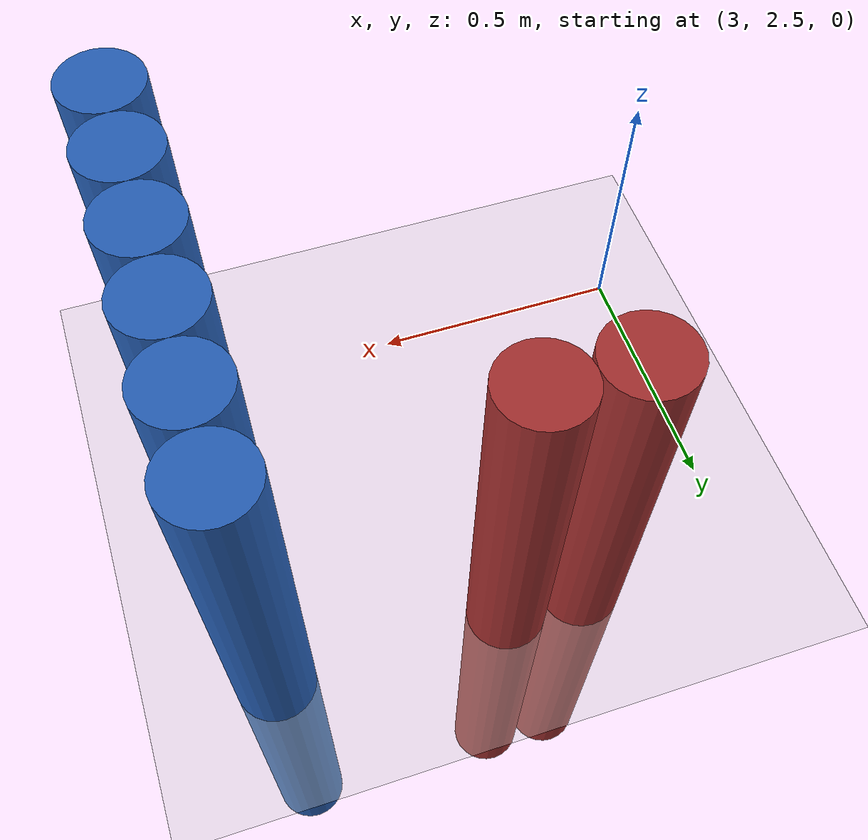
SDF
<sdf version="1.6">
 <world name="default">
  <model name="ground_plane">
   <static>1</static>
   <link name="link">
    <collision name="collision">
     <geometry><plane><normal>0 0 1</normal><size>100 100</size></plane></geometry>
     <surface><friction><ode><mu>100</mu><mu2>50</mu2></ode></friction></surface>
    </collision>
    <visual name="visual">
     <cast_shadows>0</cast_shadows>
     <geometry><plane><normal>0 0 1</normal><size>100 100</size></plane></geometry>
     <material>
      <script><uri>file://media/materials/scripts/gazebo.material</uri><name>Gazebo/Grey</name></script>
     </material>
    </visual>
   </link>
  </model>
  <model name="unit_cylinder_146">
   <static>1</static>
   <pose>3.925000 2.425000 0.000000 0.000000 0.000000 0.000000</pose>
   <link name="link">
    <inertial>
     <mass>1</mass>
     <inertia><ixx>0.145833</ixx><ixy>0</ixy><ixz>0</ixz><iyy>0.145833</iyy><iyz>0</iyz><izz>0.125</izz></inertia>
    </inertial>
    <collision name="collision">
     <geometry><cylinder><radius>0.075000</radius><length>1.5</length></cylinder></geometry>
    </collision>
    <visual name="visual">
     <geometry><cylinder><radius>0.075000</radius><length>1.5</length></cylinder></geometry>
     <material>
      <ambient>0.152000 0.379000 0.720000 1</ambient>
      <diffuse>0.152000 0.379000 0.720000 1</diffuse>
     </material>
     <material>
      <script><name>Gazebo/Grey</name><uri>file://media/materials/scripts/gazebo.material</uri></script>
     </material>
    </visual>
   </link>
  </model>
  <model name="unit_cylinder_148">
   <static>1</static>
   <pose>3.925000 2.575000 0.000000 0.000000 0.000000 0.000000</pose>
   <link name="link">
    <inertial>
     <mass>1</mass>
     <inertia><ixx>0.145833</ixx><ixy>0</ixy><ixz>0</ixz><iyy>0.145833</iyy><iyz>0</iyz><izz>0.125</izz></inertia>
    </inertial>
    <collision name="collision">
     <geometry><cylinder><radius>0.075000</radius><length>1.5</length></cylinder></geometry>
    </collision>
    <visual name="visual">
     <geometry><cylinder><radius>0.075000</radius><length>1.5</length></cylinder></geometry>
     <material>
      <ambient>0.152000 0.379000 0.720000 1</ambient>
      <diffuse>0.152000 0.379000 0.720000 1</diffuse>
     </material>
     <material>
      <script><name>Gazebo/Grey</name><uri>file://media/materials/scripts/gazebo.material</uri></script>
     </material>
    </visual>
   </link>
  </model>
  <model name="unit_cylinder_150">
   <static>1</static>
   <pose>3.925000 2.725000 0.000000 0.000000 0.000000 0.000000</pose>
   <link name="link">
    <inertial>
     <mass>1</mass>
     <inertia><ixx>0.145833</ixx><ixy>0</ixy><ixz>0</ixz><iyy>0.145833</iyy><iyz>0</iyz><izz>0.125</izz></inertia>
    </inertial>
    <collision name="collision">
     <geometry><cylinder><radius>0.075000</radius><length>1.5</length></cylinder></geometry>
    </collision>
    <visual name="visual">
     <geometry><cylinder><radius>0.075000</radius><length>1.5</length></cylinder></geometry>
     <material>
      <ambient>0.152000 0.379000 0.720000 1</ambient>
      <diffuse>0.152000 0.379000 0.720000 1</diffuse>
     </material>
     <material>
      <script><name>Gazebo/Grey</name><uri>file://media/materials/scripts/gazebo.material</uri></script>
     </material>
    </visual>
   </link>
  </model>
  <model name="unit_cylinder_152">
   <static>1</static>
   <pose>3.925000 2.875000 0.000000 0.000000 0.000000 0.000000</pose>
   <link name="link">
    <inertial>
     <mass>1</mass>
     <inertia><ixx>0.145833</ixx><ixy>0</ixy><ixz>0</ixz><iyy>0.145833</iyy><iyz>0</iyz><izz>0.125</izz></inertia>
    </inertial>
    <collision name="collision">
     <geometry><cylinder><radius>0.075000</radius><length>1.5</length></cylinder></geometry>
    </collision>
    <visual name="visual">
     <geometry><cylinder><radius>0.075000</radius><length>1.5</length></cylinder></geometry>
     <material>
      <ambient>0.152000 0.379000 0.720000 1</ambient>
      <diffuse>0.152000 0.379000 0.720000 1</diffuse>
     </material>
     <material>
      <script><name>Gazebo/Grey</name><uri>file://media/materials/scripts/gazebo.material</uri></script>
     </material>
    </visual>
   </link>
  </model>
  <model name="unit_cylinder_154">
   <static>1</static>
   <pose>3.925000 3.025000 0.000000 0.000000 0.000000 0.000000</pose>
   <link name="link">
    <inertial>
     <mass>1</mass>
     <inertia><ixx>0.145833</ixx><ixy>0</ixy><ixz>0</ixz><iyy>0.145833</iyy><iyz>0</iyz><izz>0.125</izz></inertia>
    </inertial>
    <collision name="collision">
     <geometry><cylinder><radius>0.075000</radius><length>1.5</length></cylinder></geometry>
    </collision>
    <visual name="visual">
     <geometry><cylinder><radius>0.075000</radius><length>1.5</length></cylinder></geometry>
     <material>
      <ambient>0.152000 0.379000 0.720000 1</ambient>
      <diffuse>0.152000 0.379000 0.720000 1</diffuse>
     </material>
     <material>
      <script><name>Gazebo/Grey</name><uri>file://media/materials/scripts/gazebo.material</uri></script>
     </material>
    </visual>
   </link>
  </model>
  <model name="unit_cylinder_156">
   <static>1</static>
   <pose>3.925000 3.175000 0.000000 0.000000 0.000000 0.000000</pose>
   <link name="link">
    <inertial>
     <mass>1</mass>
     <inertia><ixx>0.145833</ixx><ixy>0</ixy><ixz>0</ixz><iyy>0.145833</iyy><iyz>0</iyz><izz>0.125</izz></inertia>
    </inertial>
    <collision name="collision">
     <geometry><cylinder><radius>0.075000</radius><length>1.5</length></cylinder></geometry>
    </collision>
    <visual name="visual">
     <geometry><cylinder><radius>0.075000</radius><length>1.5</length></cylinder></geometry>
     <material>
      <ambient>0.152000 0.379000 0.720000 1</ambient>
      <diffuse>0.152000 0.379000 0.720000 1</diffuse>
     </material>
     <material>
      <script><name>Gazebo/Grey</name><uri>file://media/materials/scripts/gazebo.material</uri></script>
     </material>
    </visual>
   </link>
  </model>
  <model name="unit_cylinder_294">
   <static>1</static>
   <pose>3.325000 3.175000 0.000000 0.000000 0.000000 0.000000</pose>
   <link name="link">
    <inertial>
     <mass>1</mass>
     <inertia><ixx>0.145833</ixx><ixy>0</ixy><ixz>0</ixz><iyy>0.145833</iyy><iyz>0</iyz><izz>0.125</izz></inertia>
    </inertial>
    <collision name="collision">
     <geometry><cylinder><radius>0.075000</radius><length>1.5</length></cylinder></geometry>
    </collision>
    <visual name="visual">
     <geometry><cylinder><radius>0.075000</radius><length>1.5</length></cylinder></geometry>
     <material>
      <ambient>0.648000 0.192000 0.192000 1</ambient>
      <diffuse>0.648000 0.192000 0.192000 1</diffuse>
     </material>
     <material>
      <script><name>Gazebo/Grey</name><uri>file://media/materials/scripts/gazebo.material</uri></script>
     </material>
    </visual>
   </link>
  </model>
  <model name="unit_cylinder_295">
   <static>1</static>
   <pose>3.475000 3.175000 0.000000 0.000000 0.000000 0.000000</pose>
   <link name="link">
    <inertial>
     <mass>1</mass>
     <inertia><ixx>0.145833</ixx><ixy>0</ixy><ixz>0</ixz><iyy>0.145833</iyy><iyz>0</iyz><izz>0.125</izz></inertia>
    </inertial>
    <collision name="collision">
     <geometry><cylinder><radius>0.075000</radius><length>1.5</length></cylinder></geometry>
    </collision>
    <visual name="visual">
     <geometry><cylinder><radius>0.075000</radius><length>1.5</length></cylinder></geometry>
     <material>
      <ambient>0.648000 0.192000 0.192000 1</ambient>
      <diffuse>0.648000 0.192000 0.192000 1</diffuse>
     </material>
     <material>
      <script><name>Gazebo/Grey</name><uri>file://media/materials/scripts/gazebo.material</uri></script>
     </material>
    </visual>
   </link>
  </model>
  <model name="unit_cylinder_333">
   <static>1</static>
   <pose>3.925000 2.425000 0.000000 0.000000 0.000000 0.000000</pose>
   <link name="link">
    <inertial>
     <mass>1</mass>
     <inertia><ixx>0.145833</ixx><ixy>0</ixy><ixz>0</ixz><iyy>0.145833</iyy><iyz>0</iyz><izz>0.125</izz></inertia>
    </inertial>
    <collision name="collision">
     <geometry><cylinder><radius>0.075000</radius><length>1.5</length></cylinder></geometry>
    </collision>
    <visual name="visual">
     <geometry><cylinder><radius>0.075000</radius><length>1.5</length></cylinder></geometry>
     <material>
      <ambient>0.152000 0.379000 0.720000 1</ambient>
      <diffuse>0.152000 0.379000 0.720000 1</diffuse>
     </material>
     <material>
      <script><name>Gazebo/Grey</name><uri>file://media/materials/scripts/gazebo.material</uri></script>
     </material>
    </visual>
   </link>
  </model>
  <model name="unit_cylinder_334">
   <static>1</static>
   <pose>3.925000 2.575000 0.000000 0.000000 0.000000 0.000000</pose>
   <link name="link">
    <inertial>
     <mass>1</mass>
     <inertia><ixx>0.145833</ixx><ixy>0</ixy><ixz>0</ixz><iyy>0.145833</iyy><iyz>0</iyz><izz>0.125</izz></inertia>
    </inertial>
    <collision name="collision">
     <geometry><cylinder><radius>0.075000</radius><length>1.5</length></cylinder></geometry>
    </collision>
    <visual name="visual">
     <geometry><cylinder><radius>0.075000</radius><length>1.5</length></cylinder></geometry>
     <material>
      <ambient>0.152000 0.379000 0.720000 1</ambient>
      <diffuse>0.152000 0.379000 0.720000 1</diffuse>
     </material>
     <material>
      <script><name>Gazebo/Grey</name><uri>file://media/materials/scripts/gazebo.material</uri></script>
     </material>
    </visual>
   </link>
  </model>
  <model name="unit_cylinder_335">
   <static>1</static>
   <pose>3.925000 2.725000 0.000000 0.000000 0.000000 0.000000</pose>
   <link name="link">
    <inertial>
     <mass>1</mass>
     <inertia><ixx>0.145833</ixx><ixy>0</ixy><ixz>0</ixz><iyy>0.145833</iyy><iyz>0</iyz><izz>0.125</izz></inertia>
    </inertial>
    <collision name="collision">
     <geometry><cylinder><radius>0.075000</radius><length>1.5</length></cylinder></geometry>
    </collision>
    <visual name="visual">
     <geometry><cylinder><radius>0.075000</radius><length>1.5</length></cylinder></geometry>
     <material>
      <ambient>0.152000 0.379000 0.720000 1</ambient>
      <diffuse>0.152000 0.379000 0.720000 1</diffuse>
     </material>
     <material>
      <script><name>Gazebo/Grey</name><uri>file://media/materials/scripts/gazebo.material</uri></script>
     </material>
    </visual>
   </link>
  </model>
  <model name="unit_cylinder_336">
   <static>1</static>
   <pose>3.925000 2.875000 0.000000 0.000000 0.000000 0.000000</pose>
   <link name="link">
    <inertial>
     <mass>1</mass>
     <inertia><ixx>0.145833</ixx><ixy>0</ixy><ixz>0</ixz><iyy>0.145833</iyy><iyz>0</iyz><izz>0.125</izz></inertia>
    </inertial>
    <collision name="collision">
     <geometry><cylinder><radius>0.075000</radius><length>1.5</length></cylinder></geometry>
    </collision>
    <visual name="visual">
     <geometry><cylinder><radius>0.075000</radius><length>1.5</length></cylinder></geometry>
     <material>
      <ambient>0.152000 0.379000 0.720000 1</ambient>
      <diffuse>0.152000 0.379000 0.720000 1</diffuse>
     </material>
     <material>
      <script><name>Gazebo/Grey</name><uri>file://media/materials/scripts/gazebo.material</uri></script>
     </material>
    </visual>
   </link>
  </model>
  <model name="unit_cylinder_337">
   <static>1</static>
   <pose>3.925000 3.025000 0.000000 0.000000 0.000000 0.000000</pose>
   <link name="link">
    <inertial>
     <mass>1</mass>
     <inertia><ixx>0.145833</ixx><ixy>0</ixy><ixz>0</ixz><iyy>0.145833</iyy><iyz>0</iyz><izz>0.125</izz></inertia>
    </inertial>
    <collision name="collision">
     <geometry><cylinder><radius>0.075000</radius><length>1.5</length></cylinder></geometry>
    </collision>
    <visual name="visual">
     <geometry><cylinder><radius>0.075000</radius><length>1.5</length></cylinder></geometry>
     <material>
      <ambient>0.152000 0.379000 0.720000 1</ambient>
      <diffuse>0.152000 0.379000 0.720000 1</diffuse>
     </material>
     <material>
      <script><name>Gazebo/Grey</name><uri>file://media/materials/scripts/gazebo.material</uri></script>
     </material>
    </visual>
   </link>
  </model>
 </world>
</sdf>
